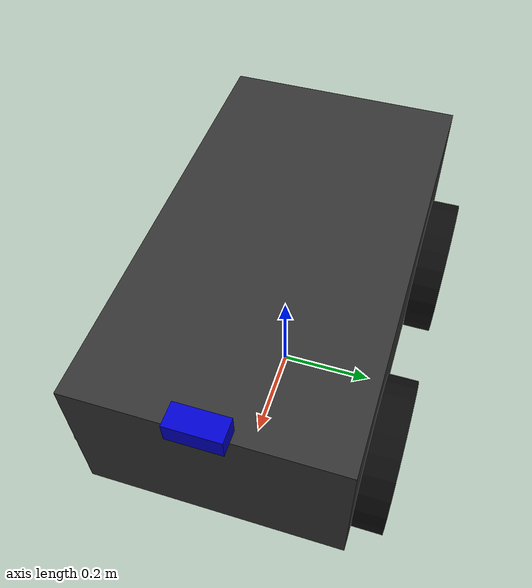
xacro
<?xml version="1.0"?>
<robot xmlns:xacro="http://www.ros.org/wiki/xacro" name="mobile_robot">

  <xacro:property name="chassis_mass"   value="8.00"/>
  <xacro:property name="chassis_length" value="0.90"/>
  <xacro:property name="chassis_width"  value="0.50"/>
  <xacro:property name="chassis_height" value="0.30"/>

  <xacro:property name="wheel_mass"     value="2.00"/>
  <xacro:property name="wheel_radius"   value="0.150"/>
  <xacro:property name="wheel_length"   value="0.06"/>

  <xacro:property name="camera_mass"     value="0.150"/>
  <xacro:property name="camera_length"   value="0.0450"/>
  <xacro:property name="camera_width"   value="0.10"/>
  <xacro:property name="camera_height"   value="0.040"/>

  <material name="chassis_color"><color rgba="0.2 0.2 0.2 1"/></material>
  <material name="wheel_color"><color rgba="0.05 0.05 0.05 1"/></material>
  <material name="camera_color"><color rgba="0.0 0.0 0.8 1"/></material>

  <xacro:macro name="box_inertia" params="m l w h">
    <inertial>
      <origin xyz="0 0 0" rpy="0 0 0"/>
      <mass value="${m}"/>
      <inertia ixx="${(1.0/12.0) * m * (w*w + h*h)}" ixy="0.0" ixz="0.0"
               iyy="${(1.0/12.0) * m * (l*l + h*h)}" iyz="0.0"
               izz="${(1.0/12.0) * m * (l*l + w*w)}"/>
    </inertial>
  </xacro:macro>

  <xacro:macro name="wheel_cylinder_inertia" params="m r h">
    <inertial>
      <origin xyz="0 0 0" rpy="1.5708 0 0"/>
      <mass value="${m}"/>
      <inertia ixx="${(1.0/12.0) * m * (3.0*r*r + h*h)}" ixy="0.0" ixz="0.0"
               iyy="${(1.0/2.0) * m * (r*r)}" iyz="0.0"
               izz="${(1.0/12.0) * m * (3.0*r*r + h*h)}"/>
    </inertial>
  </xacro:macro>

  <xacro:macro name="camera_inertia" params="m l w h">
    <inertial>
      <origin xyz="0 0 0" rpy="0 0 0"/>
      <mass value="${m}"/>
      <inertia ixx="${(1.0/12.0) * m * (w*w + h*h)}" ixy="0.0" ixz="0.0"
               iyy="${(1.0/12.0) * m * (l*l + h*h)}" iyz="0.0"
               izz="${(1.0/2.0) * m * (l*l)}"/>
    </inertial>
  </xacro:macro>

  <link name="base_footprint"/>

  <joint name="base_footprint_joint" type="fixed">
    <parent link="base_footprint"/>
    <child link="base_link"/>
    <origin xyz="0 0 0.28" rpy="0 0 0"/>
  </joint>

  <link name="base_link">
    <xacro:box_inertia m="${chassis_mass}" l="${chassis_length}" w="${chassis_width}" h="${chassis_height}"/>
    <visual name="base_link_visual">
      <origin xyz="0 0 0" rpy="0 0 0"/>
      <geometry>
        <box size="${chassis_length} ${chassis_width} ${chassis_height}"/>
      </geometry>
      <material name="chassis_color"/>
    </visual>
    <collision name="base_link_collision">
      <origin xyz="0 0 0" rpy="0 0 0"/>
      <geometry>
        <box size="${chassis_length} ${chassis_width} ${chassis_height}"/>
      </geometry>
    </collision>
  </link>

  <gazebo reference="base_link">
    <material>Gazebo/DarkGrey</material>
  </gazebo>

  <xacro:macro name="wheel" params="prefix x_reflect y_reflect">
    <link name="${prefix}_wheel">
      <xacro:wheel_cylinder_inertia m="${wheel_mass}" r="${wheel_radius}" h="${wheel_length}"/>
      <visual name="${prefix}_wheel_visual">
        <origin xyz="0 0 0" rpy="1.5708 0 0"/>
        <geometry>
          <cylinder radius="${wheel_radius}" length="${wheel_length}"/>
        </geometry>
        <material name="wheel_color"/>
      </visual>
      <collision name="${prefix}_wheel_collision">
        <origin xyz="0 0 0" rpy="1.5708 0 0"/>
        <geometry>
          <cylinder radius="${wheel_radius}" length="${wheel_length}"/>
        </geometry>
      </collision>
    </link>

    <gazebo reference="${prefix}_wheel">
      <mu1>1.5</mu1>
      <mu2>1.5</mu2>
      <kp>1000000.0</kp>
      <kd>100.0</kd>
    </gazebo>

    <joint name="${prefix}_wheel_joint" type="continuous">
      <origin xyz="${x_reflect * 0.250} ${y_reflect * 0.28} -0.13" rpy="0 0 0"/>
      <parent link="base_link"/>
      <child link="${prefix}_wheel"/>
      <axis xyz="0 1 0"/>
    </joint>
  </xacro:macro>

  <xacro:wheel prefix="right_front" x_reflect="1"  y_reflect="-1"/>
  <xacro:wheel prefix="right_rear"  x_reflect="-1" y_reflect="-1"/>
  <xacro:wheel prefix="left_front"  x_reflect="1"  y_reflect="1"/>
  <xacro:wheel prefix="left_rear"   x_reflect="-1" y_reflect="1"/>

  <link name="camera_link">
    <xacro:camera_inertia m="${camera_mass}" l="${camera_length}" w="${camera_width}" h="${camera_height}"/>
    <visual name="camera_visual">
      <origin xyz="0 0 0" rpy="0 0 0"/>
      <geometry>
        <box size="${camera_length} ${camera_width} ${camera_height}"/>
      </geometry>
      <material name="camera_color"/>
    </visual>
    <collision name="camera_collision">
      <origin xyz="0 0 0" rpy="0 0 0"/>
      <geometry>
        <box size="${camera_length} ${camera_width} ${camera_height}"/>
      </geometry>
    </collision>

  </link>
  <link name="camera_optical_link"/>
  <joint name="camera_optical_joint" type="fixed">
    <parent link="camera_link"/>
    <child link="camera_optical_link"/>
    <origin xyz="0 0 0" rpy="-1.5708 0 -1.5708"/>
  </joint>
  <link name="camera_accel_gyro_link"/>
  <joint name="camera_imu_joint" type="fixed">
    <parent link="camera_link"/>
    <child link="camera_accel_gyro_link"/>
    <origin xyz="0 0 0" rpy="0 0 0"/>
  </joint>

  <joint name="camera_joint" type="fixed">
    <origin xyz="0.45 0 0.17" rpy="0 0 0"/>
    <parent link="base_link"/>
    <child link="camera_link"/>
  </joint>

  <gazebo>
    <plugin filename="gz-sim-diff-drive-system" name="gz::sim::systems::DiffDrive">
      <left_joint>left_front_wheel_joint</left_joint>
      <left_joint>left_rear_wheel_joint</left_joint>
      <right_joint>right_front_wheel_joint</right_joint>
      <right_joint>right_rear_wheel_joint</right_joint>
      <wheel_separation>0.56</wheel_separation>
      <wheel_radius>${wheel_radius}</wheel_radius>
      <topic>/cmd_vel</topic>

      </plugin>

      <plugin
        filename="gz-sim-odometry-publisher-system"
        name="gz::sim::systems::OdometryPublisher">
        <odom_frame>odom</odom_frame>
        <robot_base_frame>base_footprint</robot_base_frame>
        <odom_publish_frequency>50</odom_publish_frequency>
        <odom_topic>/odom</odom_topic>
        <tf_topic>/tf</tf_topic>
        <dimensions>2</dimensions>
        </plugin>

    <plugin filename="gz-sim-joint-state-publisher-system" name="gz::sim::systems::JointStatePublisher">
      <topic>/joint_states</topic>
      <joint_name>left_front_wheel_joint</joint_name>
      <joint_name>left_rear_wheel_joint</joint_name>
      <joint_name>right_front_wheel_joint</joint_name>
      <joint_name>right_rear_wheel_joint</joint_name>
    </plugin>
  </gazebo>
  <gazebo reference="camera_link">
    <!-- 1. Stereo RGBD Vision Engine -->
    <sensor name="realsense_d435i_color" type="rgbd_camera">
      <camera>
        <!-- RealSense D435i Horizontal FOV (~87 deg) -->
        <horizontal_fov>1.518</horizontal_fov>
        <image>
          <width>640</width>
          <height>480</height>
          <format>R8G8B8</format>
        </image>
        <clip>
          <near>0.1</near>
          <far>10.0</far>
        </clip>
        <depth_camera>
          <clip>
            <near>0.2</near>
            <far>10.0</far>
          </clip>
        </depth_camera>

      </camera>
      <always_on>1</always_on>
      <update_rate>15</update_rate>
      <visualize>true</visualize>
      <topic>/camera/image_raw</topic>
      <gz_frame_id>camera_link</gz_frame_id>
    </sensor>

    <!-- 2. Onboard 6-DoF IMU Engine -->
    <sensor name="realsense_d435i_imu" type="imu">
      <always_on>1</always_on>
      <update_rate>100</update_rate>
      <visualize>false</visualize>
      <topic>/camera/imu</topic>
      <gz_frame_id>camera_accel_gyro_link</gz_frame_id>
      <imu>
        <angular_velocity>
          <x><noise type="gaussian"><mean>0.0</mean><stddev>0.001</stddev></noise></x>
          <y><noise type="gaussian"><mean>0.0</mean><stddev>0.001</stddev></noise></y>
          <z><noise type="gaussian"><mean>0.0</mean><stddev>0.001</stddev></noise></z>
        </angular_velocity>
        <linear_acceleration>
          <x><noise type="gaussian"><mean>0.0</mean><stddev>0.01</stddev></noise></x>
          <y><noise type="gaussian"><mean>0.0</mean><stddev>0.01</stddev></noise></y>
          <z><noise type="gaussian"><mean>0.0</mean><stddev>0.01</stddev></noise></z>
        </linear_acceleration>
      </imu>
    </sensor>
  </gazebo>

</robot>
